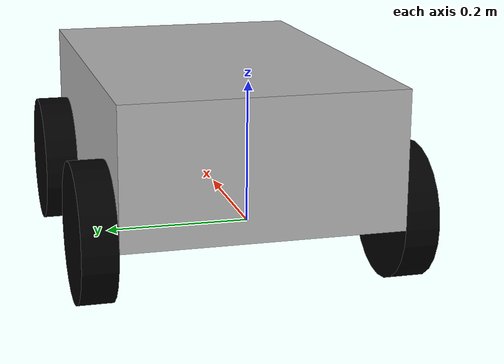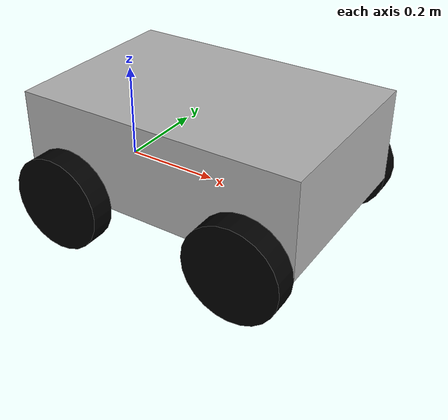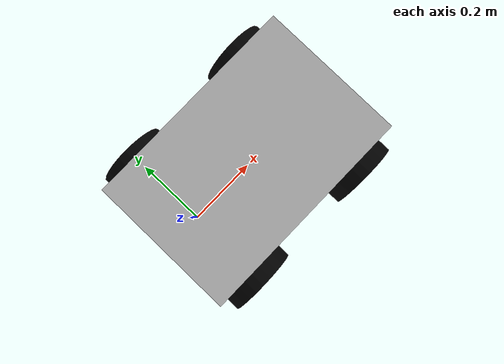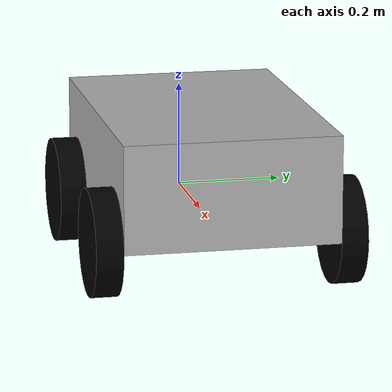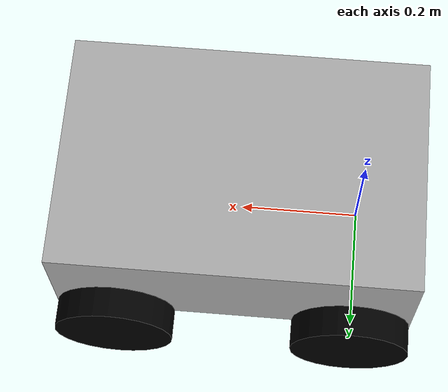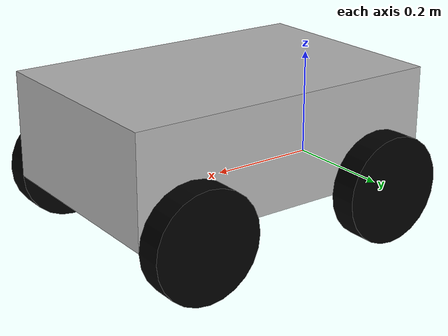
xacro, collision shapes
<?xml version="1.0"?>
<robot xmlns:xacro="http://www.ros.org/wiki/xacro">

    <xacro:include filename="inertial_macros.xacro"/>

    <material name="grey">
        <color rgba="0.7 0.7 0.7 1.0"/>
    </material>

    <material name="black">
        <color rgba="0 0 0 1.0"/>
    </material>

    <material name="green">
        <color rgba="0 0.6 0 1.0"/>
    </material>

    <material name="blue">
        <color rgba="0 0.0 0.7 1.0"/>
    </material>

    <material name="red">
        <color rgba="0.6 0.0 0 1.0"/>
    </material>

    <material name="white">
        <color rgba="1 1 1 1.0"/>
    </material>

    <!-- BASE LINK -->

    <link name="base_link">
    </link>
    <!-- BASE FOOTPRINT-->
    <joint name="base_footprint_joint" type="fixed">
        <origin xyz="0 0 0" rpy="0 0 0"/>
        <parent link="base_link"/>
        <child link="base_footprint"/>
    </joint>
    <link name="base_footprint">
    </link>
    <!-- CHASSIS LINK -->
    <link name="chassis_link">
        <visual>
            <geometry>
                <box size="0.6 0.4 0.2"/>
            </geometry>
            <origin xyz="0.3 0.0 0.1" rpy="0.0 0.0 0.0"/>
            <material name="grey"/>
        </visual>
        <collision>
            <geometry>
                <box size="0.6 0.4 0.2"/>
            </geometry>
            <origin xyz="0.3 0.0 0.1" rpy="0.0 0.0 0.0"/>
        </collision>
        <xacro:inertial_box mass="0.75" x="0.6" y="0.4" z="0.2">
            <origin xyz="0.3 0.0 0.1" rpy="0.0 0.0 0.0"/>
        </xacro:inertial_box>
    </link>
    <gazebo reference="chassis_link">
        <mu1>0.2</mu1>
        <mu2>0.2</mu2>
        <material>Gazebo/Grey</material>
    </gazebo>
    <joint name="chassis_joint" type="fixed">
        <parent link="base_link"/>
        <child link="chassis_link"/>
        <origin xyz="-0.1 0.0 0.0" rpy="0.0 0.0 0.0"/>
    </joint>
    <!-- LEFT WHEEL(BACK)-->
    <link name="left_back_wheel">
        <visual>
            <origin xyz="0.0 0.0 0.025" rpy="-1.57 0.0 0.0"/>
            <geometry>
                        <mesh
          filename="file://$(find halo)/meshes/RWL.STL" />
            </geometry>
            <material name="black"/>
        </visual>
        <collision>
            <origin xyz="0.0 0.0 0.0" rpy="0.0 0.0 0.0"/>
            <geometry>
                <cylinder radius="0.1" length="0.05"/>
            </geometry>
        </collision>
        <xacro:inertial_cylinder mass="0.2" radius="0.1" length="0.05">
            <origin xyz="0.0 0.0 0.0" rpy="0.0 0.0 0.0"/>
        </xacro:inertial_cylinder>
    </link>
    <gazebo reference="left_back_wheel">
        <mu1>0.2</mu1>
        <mu2>0.2</mu2>
        <kp>1e15</kp>
        <kd>1e14</kd>
        <material>Gazebo/Black</material>
    </gazebo>
    <joint name="left_back_wheel_joint" type="continuous">
        <origin xyz="0.0 0.225 0.0" rpy="-1.5707963267948966 0.0 0.0"/>
        <parent link="base_link"/>
        <child link="left_back_wheel"/>
        <axis xyz="0.0 0.0 1.0"/>
    </joint>

    <!-- RIGHT WHEEL(BACK)-->
    <link name="right_back_wheel">
        <visual>
            <origin xyz="0.0 0.0 -0.025" rpy="1.57 0.0 0.0"/>
            <geometry>
                    <mesh
          filename="file://$(find halo)/meshes/RWR.STL" />
            </geometry>
            <material name="black"/>
        </visual>
        <collision>
            <origin xyz="0.0 0.0 0.0" rpy="0.0 0.0 0.0"/>
            <geometry>
                <cylinder radius="0.1" length="0.05"/>
            </geometry>
        </collision>
        <xacro:inertial_cylinder mass="0.2" radius="0.1" length="0.05">
            <origin xyz="0.0 0.0 0.0" rpy="0.0 0.0 0.0"/>
        </xacro:inertial_cylinder>
    </link>
    <gazebo reference="right_back_wheel">
        <mu1>0.2</mu1>
        <mu2>0.2</mu2>
        <kp>1e15</kp>
        <kd>1e14</kd>
        <material>Gazebo/Black</material>
    </gazebo>
    <joint name="right_back_wheel_joint" type="continuous">
        <origin xyz="0.0 -0.225 0.0" rpy="1.5707963267948966 0.0 0.0"/>
        <parent link="base_link"/>
        <child link="right_back_wheel"/>
        <axis xyz="0.0 0.0 -1.0"/>
    </joint>
    <!-- LEFT WHEEL(FRONT)-->
    <link name="left_front_wheel">
        <visual>
            <origin xyz="0.0 0.0 0.025" rpy="-1.57 0.0 0.0"/>
            <geometry>
                        <mesh
           filename="file://$(find halo)/meshes/FWL.STL" />
            </geometry>
            <material name="black"/>
        </visual>
        <collision>
            <origin xyz="0.0 0.0 0.0" rpy="0.0 0.0 0.0"/>
            <geometry>
                <cylinder radius="0.1" length="0.05"/>
            </geometry>
        </collision>
        <xacro:inertial_cylinder mass="0.2" radius="0.1" length="0.05">
            <origin xyz="0.0 0.0 0.0" rpy="0.0 0.0 0.0"/>
        </xacro:inertial_cylinder>
    </link>
    <gazebo reference="left_front_wheel">
        <mu1>0.2</mu1>
        <mu2>0.2</mu2>
        <kp>1e15</kp>
        <kd>1e14</kd>
        <material>Gazebo/Black</material>
    </gazebo>
    <joint name="left_front_wheel_joint" type="continuous">
        <origin xyz="0.4 0.225 0.0" rpy="-1.5707963267948966 0.0 0.0"/>
        <parent link="base_link"/>
        <child link="left_front_wheel"/>
        <axis xyz="0.0 0.0 1.0"/>
    </joint>

    <!-- RIGHT WHEEL(FRONT)-->
    <link name="right_front_wheel">
        <visual>
            <origin xyz="0.0 0.0 -0.025" rpy="1.57 0.0 0.0"/>
            <geometry>
                        <mesh
          filename="file://$(find halo)/meshes/FWR.STL" />
            </geometry>
            <material name="black"/>
        </visual>
        <collision>
            <origin xyz="0.0 0.0 0.0" rpy="0.0 0.0 0.0"/>
            <geometry>
                <cylinder radius="0.1" length="0.05"/>
            </geometry>
        </collision>
        <xacro:inertial_cylinder mass="0.2" radius="0.1" length="0.05">
            <origin xyz="0.0 0.0 0.0" rpy="0.0 0.0 0.0"/>
        </xacro:inertial_cylinder>
    </link>
    <gazebo reference="right_front_wheel">
        <mu1>0.2</mu1>
        <mu2>0.2</mu2>
        <kp>1e15</kp>
        <kd>1e14</kd>
        <material>Gazebo/Black</material>
    </gazebo>
    <joint name="right_front_wheel_joint" type="continuous">
        <origin xyz="0.4 -0.225 0.0" rpy="1.5707963267948966 0.0 0.0"/>
        <parent link="base_link"/>
        <child link="right_front_wheel"/>
        <axis xyz="0.0 0.0 -1.0"/>
    </joint>
</robot>
